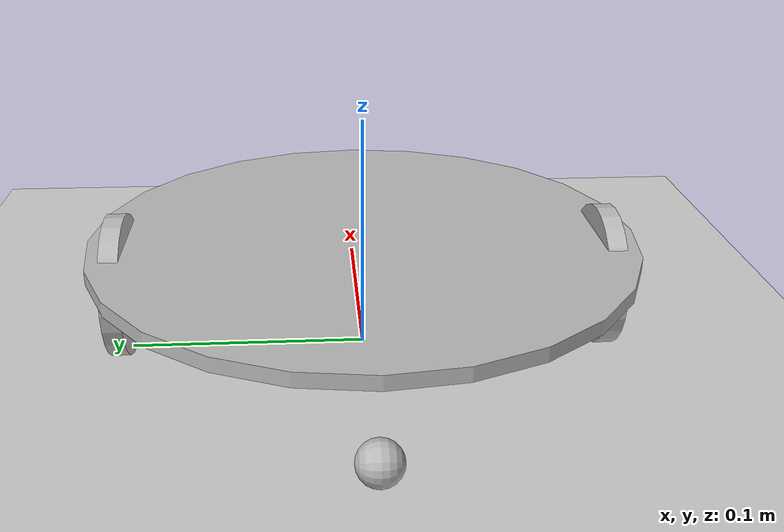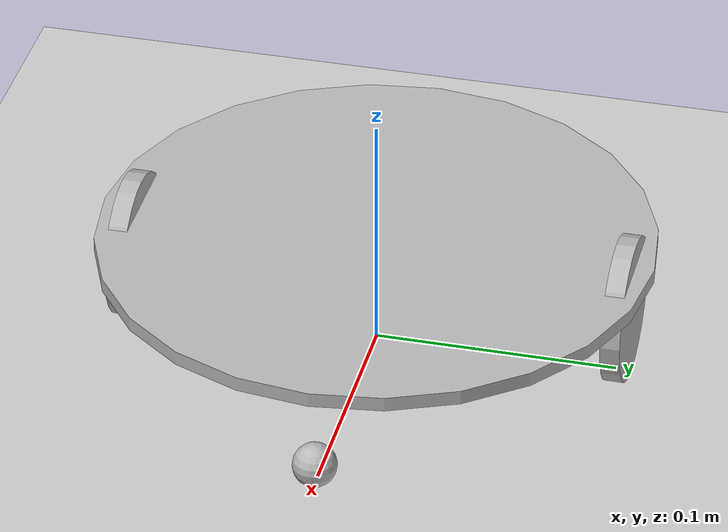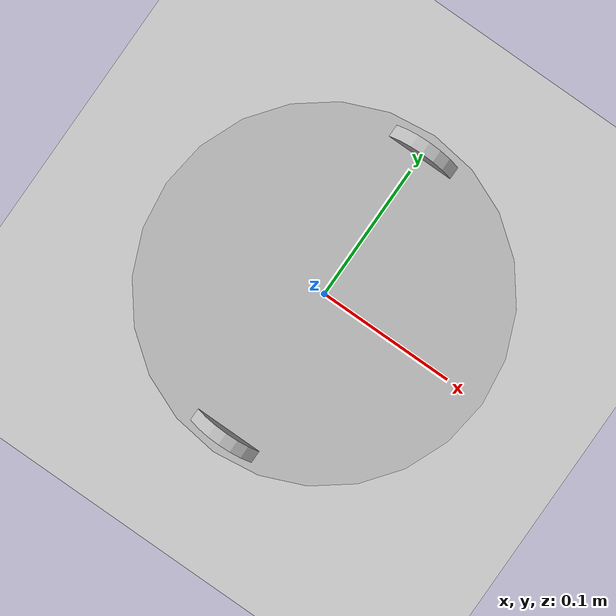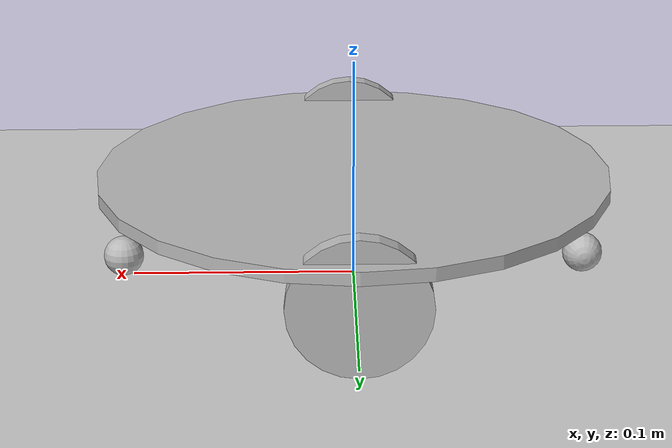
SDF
<sdf version="1.6">
 <world name="default">
  <include><uri>model://ground_plane</uri></include>
  <include><uri>model://sun</uri></include>
  <include><uri>model://prsg2_base_jointed_wheels</uri></include>
 </world>
</sdf>

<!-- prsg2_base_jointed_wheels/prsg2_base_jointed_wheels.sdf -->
<sdf version='1.6'>
  <model name='prsg2_robot_jointed_wheels'>
    <link name='base_link'>
      <pose frame=''>0 0 0 0 -0 0</pose>
      <inertial>
        <pose frame=''>0 0 0.034 0 -0 0</pose>
        <mass>1.2</mass>
        <inertia>
          <ixx>0.003</ixx>
          <ixy>0.0</ixy>
          <ixz>0.0</ixz>
          <iyy>0.003</iyy>
          <iyz>0.0</iyz>
          <izz>0.006</izz>
        </inertia>
      </inertial>
      <collision name='base_link_collision'>
        <pose frame=''>0 0 0.047 0 -0 0</pose>
        <geometry>
          <cylinder>
            <length>0.006</length>
            <radius>0.1143</radius>
          </cylinder>
        </geometry>
      </collision>
      <collision name='base_link_fixed_joint_lump__front_caster_link_collision_1'>
        <pose frame=''>0.1043 0 0.009 0 -0 0</pose>
        <geometry>
          <sphere>
            <radius>0.009</radius>
          </sphere>
        </geometry>
	<surface>
	  <friction>
	    <ode>
	      <mu>0</mu>
	      <mu2>0</mu2>
	      <slip1>1.0</slip1>
	      <slip2>1.0</slip2>
	    </ode>
	  </friction>
	</surface>
      </collision>
      <collision name='base_link_fixed_joint_lump__rear_caster_link_collision_3'>
        <pose frame=''>-0.1043 0 0.009 1.5708 0 -0</pose>
        <geometry>
          <sphere>
            <radius>0.009</radius>
          </sphere>
        </geometry>
	<surface>
	  <friction>
	    <ode>
	      <mu>0</mu>
	      <mu2>0</mu2>
	      <slip1>1.0</slip1>
	      <slip2>1.0</slip2>
	    </ode>
	  </friction>
	</surface>
      </collision>
      <visual name='base_link_visual'>
        <pose frame=''>0 0 0.047 0 -0 0</pose>
        <geometry>
          <cylinder>
            <length>0.006</length>
            <radius>0.1143</radius>
          </cylinder>
        </geometry>
      </visual>
      <visual name='base_link_fixed_joint_lump__front_caster_link_visual_1'>
        <pose frame=''>0.1043 0 0.009 0 -0 0</pose>
        <geometry>
          <sphere>
            <radius>0.009</radius>
          </sphere>
        </geometry>
      </visual>
      <visual name='base_link_fixed_joint_lump__rear_caster_link_visual_3'>
        <pose frame=''>-0.1043 0 0.009 1.5708 0 -0</pose>
        <geometry>
          <sphere>
            <radius>0.009</radius>
          </sphere>
        </geometry>
      </visual>
    </link>

    <link name="left_wheel">
      <collision name='base_link_fixed_joint_lump__left_wheel_link_collision_2'>
        <pose frame=''>0 0.1025 0.03 1.5708 0 -0</pose>
        <geometry>
          <cylinder>
            <length>0.008</length>
            <radius>0.03</radius>
          </cylinder>
        </geometry>
      </collision>
      <visual name='base_link_fixed_joint_lump__left_wheel_link_visual_2'>
        <pose frame=''>0 0.1025 0.03 1.5708 0 -0</pose>
        <geometry>
          <cylinder>
            <length>0.008</length>
            <radius>0.03</radius>
          </cylinder>
        </geometry>
      </visual>
      <inertial>
       <pose frame=''>0 0.1025 0.03 1.5708 0 -0</pose>
       <mass>0.1</mass>
       <inertia>
         <ixx>0.0000225</ixx>
         <ixy>0.0</ixy>
         <ixz>0.0</ixz>
         <iyy>0.0000225</iyy>
         <iyz>0.0</iyz>
         <izz>0.000045</izz>
       </inertia>
      </inertial>
      </link>

    <link name="right_wheel">
      <collision name='base_link_fixed_joint_lump__right_wheel_link_collision_4'>
        <pose frame=''>0 -0.1025 0.03 1.5708 -0 0</pose>
        <geometry>
          <cylinder>
            <length>0.008</length>
            <radius>0.03</radius>
          </cylinder>
        </geometry>
      </collision>
      <visual name='base_link_fixed_joint_lump__right_wheel_link_visual_4'>
        <pose frame=''>0 -0.1025 0.03 1.5708 -0 0</pose>
        <geometry>
          <cylinder>
            <length>0.008</length>
            <radius>0.03</radius>
          </cylinder>
        </geometry>
      </visual>
      <inertial>
       <pose frame=''>0 -0.1025 0.03 1.5708 -0 0</pose>
       <mass>0.1</mass>
       <inertia>
         <ixx>0.0000225</ixx>
         <ixy>0.0</ixy>
         <ixz>0.0</ixz>
         <iyy>0.0000225</iyy>
         <iyz>0.0</iyz>
         <izz>0.000045</izz>
       </inertia>
      </inertial>
    </link>

    <joint type="revolute" name="left_wheel_joint">
      <pose>0 0.03 0.03 0 0 0</pose>
      <child>left_wheel</child>
      <parent>base_link</parent>
      <axis>
  	<xyz>0 1 0</xyz>
      </axis>
    </joint>

    <joint type="revolute" name="right_wheel_joint">
      <pose>0 -0.03 0.03 0 0 0</pose>
      <child>right_wheel</child>
      <parent>base_link</parent>
      <axis>
  	<xyz>0 1 0</xyz>
      </axis>
    </joint>

  </model>
</sdf>
